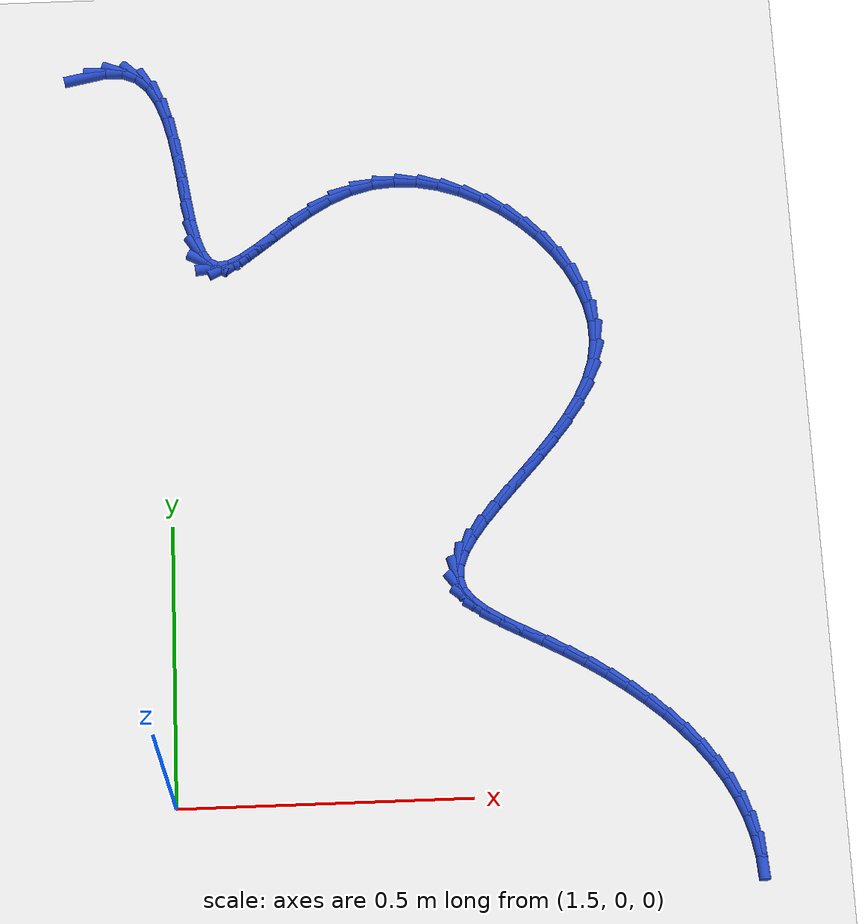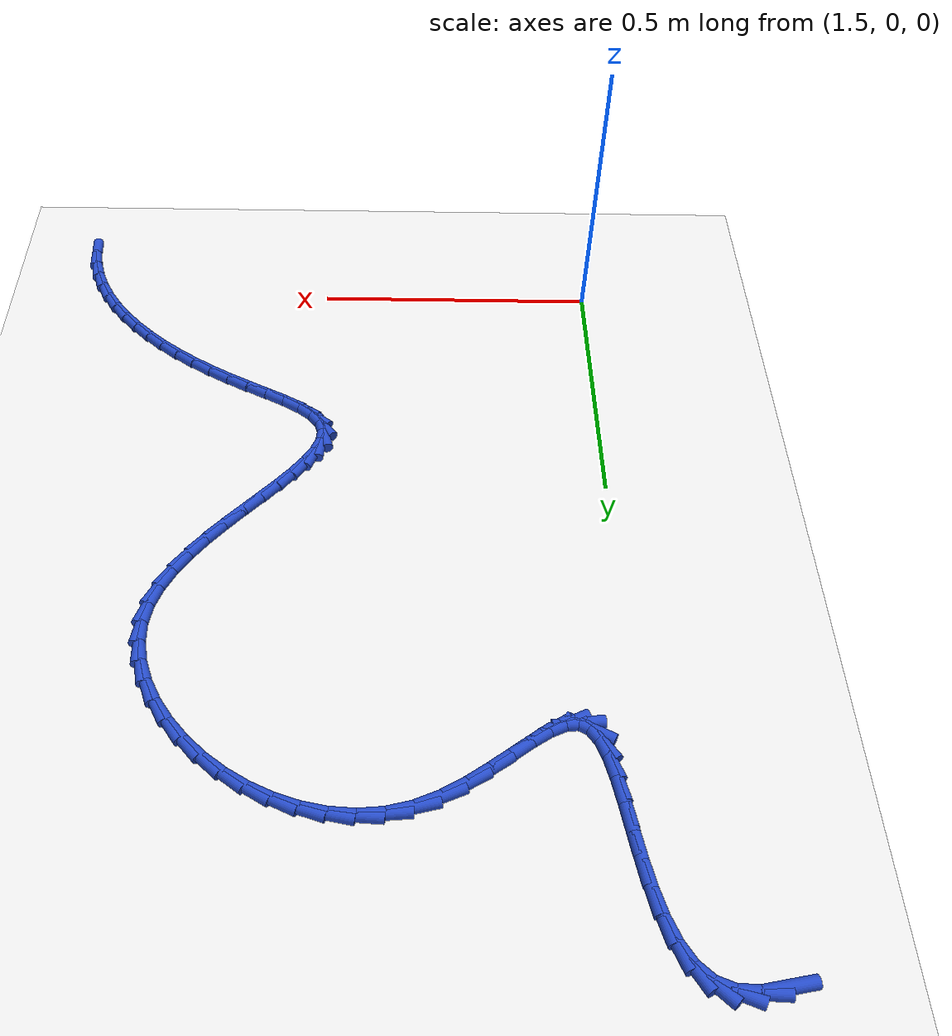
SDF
<sdf version="1.6">
 <world name="default">
  <model name="ground_plane">
   <static>1</static>
   <link name="link">
    <collision name="collision">
     <geometry><plane><normal>0 0 1</normal><size>100 100</size></plane></geometry>
     <surface><friction><ode><mu>100</mu><mu2>50</mu2></ode></friction></surface>
    </collision>
    <visual name="visual">
     <cast_shadows>0</cast_shadows>
     <geometry><plane><normal>0 0 1</normal><size>100 100</size></plane></geometry>
     <material>
      <script><uri>file://media/materials/scripts/gazebo.material</uri><name>Gazebo/WhiteGlow</name></script>
     </material>
    </visual>
   </link>
  </model>
  <model name="line">
   <link name="link_68">
    <pose>1.351033961393879 1.375672532881729 0.01 0 1.57 0.20629088825271072</pose>
    <collision name="collision">
     <geometry><cylinder><radius>0.01</radius><length>0.08</length></cylinder></geometry>
    </collision>
    <visual name="visual">
     <material>
      <script><name>Gazebo/Blue</name><uri>file://media/materials/scripts/gazebo.material</uri></script>
     </material>
     <geometry><cylinder><radius>0.01</radius><length>0.08</length></cylinder></geometry>
    </visual>
   </link>
   <link name="link_69">
    <pose>1.3872013636796257 1.383241208271342 0.01 0 1.57 -0.03338835733212643</pose>
    <collision name="collision">
     <geometry><cylinder><radius>0.01</radius><length>0.08</length></cylinder></geometry>
    </collision>
    <visual name="visual">
     <material>
      <script><name>Gazebo/Blue</name><uri>file://media/materials/scripts/gazebo.material</uri></script>
     </material>
     <geometry><cylinder><radius>0.01</radius><length>0.08</length></cylinder></geometry>
    </visual>
   </link>
   <link name="link_70">
    <pose>1.419308450094514 1.3821688068695377 0.01 0 1.57 -0.3823704977334761</pose>
    <collision name="collision">
     <geometry><cylinder><radius>0.01</radius><length>0.08</length></cylinder></geometry>
    </collision>
    <visual name="visual">
     <material>
      <script><name>Gazebo/Blue</name><uri>file://media/materials/scripts/gazebo.material</uri></script>
     </material>
     <geometry><cylinder><radius>0.01</radius><length>0.08</length></cylinder></geometry>
    </visual>
   </link>
   <link name="link_71">
    <pose>1.446483925771118 1.371239808978046 0.01 0 1.57 -0.7630492864080168</pose>
    <collision name="collision">
     <geometry><cylinder><radius>0.01</radius><length>0.08</length></cylinder></geometry>
    </collision>
    <visual name="visual">
     <material>
      <script><name>Gazebo/Blue</name><uri>file://media/materials/scripts/gazebo.material</uri></script>
     </material>
     <geometry><cylinder><radius>0.01</radius><length>0.08</length></cylinder></geometry>
    </visual>
   </link>
   <link name="link_72">
    <pose>1.4684124964242236 1.350270125774664 0.01 0 1.57 -1.0356734279002084</pose>
    <collision name="collision">
     <geometry><cylinder><radius>0.01</radius><length>0.08</length></cylinder></geometry>
    </collision>
    <visual name="visual">
     <material>
      <script><name>Gazebo/Blue</name><uri>file://media/materials/scripts/gazebo.material</uri></script>
     </material>
     <geometry><cylinder><radius>0.01</radius><length>0.08</length></cylinder></geometry>
    </visual>
   </link>
   <link name="link_73">
    <pose>1.4857915238135466 1.3209542360951931 0.01 0 1.57 -1.2066135452431048</pose>
    <collision name="collision">
     <geometry><cylinder><radius>0.01</radius><length>0.08</length></cylinder></geometry>
    </collision>
    <visual name="visual">
     <material>
      <script><name>Gazebo/Blue</name><uri>file://media/materials/scripts/gazebo.material</uri></script>
     </material>
     <geometry><cylinder><radius>0.01</radius><length>0.08</length></cylinder></geometry>
    </visual>
   </link>
   <link name="link_74">
    <pose>1.4994258593673535 1.2851860217374949 0.01 0 1.57 -1.311566841670992</pose>
    <collision name="collision">
     <geometry><cylinder><radius>0.01</radius><length>0.08</length></cylinder></geometry>
    </collision>
    <visual name="visual">
     <material>
      <script><name>Gazebo/Blue</name><uri>file://media/materials/scripts/gazebo.material</uri></script>
     </material>
     <geometry><cylinder><radius>0.01</radius><length>0.08</length></cylinder></geometry>
    </visual>
   </link>
   <link name="link_75">
    <pose>1.51012035451391 1.244859364499431 0.01 0 1.57 -1.3742673169135975</pose>
    <collision name="collision">
     <geometry><cylinder><radius>0.01</radius><length>0.08</length></cylinder></geometry>
    </collision>
    <visual name="visual">
     <material>
      <script><name>Gazebo/Blue</name><uri>file://media/materials/scripts/gazebo.material</uri></script>
     </material>
     <geometry><cylinder><radius>0.01</radius><length>0.08</length></cylinder></geometry>
    </visual>
   </link>
   <link name="link_76">
    <pose>1.518679860681482 1.2018681461788647 0.01 0 1.57 -1.4070771696291675</pose>
    <collision name="collision">
     <geometry><cylinder><radius>0.01</radius><length>0.08</length></cylinder></geometry>
    </collision>
    <visual name="visual">
     <material>
      <script><name>Gazebo/Blue</name><uri>file://media/materials/scripts/gazebo.material</uri></script>
     </material>
     <geometry><cylinder><radius>0.01</radius><length>0.08</length></cylinder></geometry>
    </visual>
   </link>
   <link name="link_77">
    <pose>1.5259092292983358 1.158106248573656 0.01 0 1.57 -1.4148430730685981</pose>
    <collision name="collision">
     <geometry><cylinder><radius>0.01</radius><length>0.08</length></cylinder></geometry>
    </collision>
    <visual name="visual">
     <material>
      <script><name>Gazebo/Blue</name><uri>file://media/materials/scripts/gazebo.material</uri></script>
     </material>
     <geometry><cylinder><radius>0.01</radius><length>0.08</length></cylinder></geometry>
    </visual>
   </link>
   <link name="link_78">
    <pose>1.5326133117927376 1.1154675534816665 0.01 0 1.57 -1.3963297663300396</pose>
    <collision name="collision">
     <geometry><cylinder><radius>0.01</radius><length>0.08</length></cylinder></geometry>
    </collision>
    <visual name="visual">
     <material>
      <script><name>Gazebo/Blue</name><uri>file://media/materials/scripts/gazebo.material</uri></script>
     </material>
     <geometry><cylinder><radius>0.01</radius><length>0.08</length></cylinder></geometry>
    </visual>
   </link>
   <link name="link_79">
    <pose>1.5395969595929528 1.0758459427007592 0.01 0 1.57 -1.3424138925389821</pose>
    <collision name="collision">
     <geometry><cylinder><radius>0.01</radius><length>0.08</length></cylinder></geometry>
    </collision>
    <visual name="visual">
     <material>
      <script><name>Gazebo/Blue</name><uri>file://media/materials/scripts/gazebo.material</uri></script>
     </material>
     <geometry><cylinder><radius>0.01</radius><length>0.08</length></cylinder></geometry>
    </visual>
   </link>
   <link name="link_80">
    <pose>1.5476650241272478 1.0411352980287956 0.01 0 1.57 -1.2280591861450956</pose>
    <collision name="collision">
     <geometry><cylinder><radius>0.01</radius><length>0.08</length></cylinder></geometry>
    </collision>
    <visual name="visual">
     <material>
      <script><name>Gazebo/Blue</name><uri>file://media/materials/scripts/gazebo.material</uri></script>
     </material>
     <geometry><cylinder><radius>0.01</radius><length>0.08</length></cylinder></geometry>
    </visual>
   </link>
   <link name="link_81">
    <pose>1.5576223568238892 1.0132295012636374 0.01 0 1.57 -0.9883382213593938</pose>
    <collision name="collision">
     <geometry><cylinder><radius>0.01</radius><length>0.08</length></cylinder></geometry>
    </collision>
    <visual name="visual">
     <material>
      <script><name>Gazebo/Blue</name><uri>file://media/materials/scripts/gazebo.material</uri></script>
     </material>
     <geometry><cylinder><radius>0.01</radius><length>0.08</length></cylinder></geometry>
    </visual>
   </link>
   <link name="link_82">
    <pose>1.5702738091111414 0.9940224342031458 0.01 0 1.57 -0.49083111527729983</pose>
    <collision name="collision">
     <geometry><cylinder><radius>0.01</radius><length>0.08</length></cylinder></geometry>
    </collision>
    <visual name="visual">
     <material>
      <script><name>Gazebo/Blue</name><uri>file://media/materials/scripts/gazebo.material</uri></script>
     </material>
     <geometry><cylinder><radius>0.01</radius><length>0.08</length></cylinder></geometry>
    </visual>
   </link>
   <link name="link_83">
    <pose>1.5864201101062132 0.9853929436850627 0.01 0 1.57 0.12040459376198254</pose>
    <collision name="collision">
     <geometry><cylinder><radius>0.01</radius><length>0.08</length></cylinder></geometry>
    </collision>
    <visual name="visual">
     <material>
      <script><name>Gazebo/Blue</name><uri>file://media/materials/scripts/gazebo.material</uri></script>
     </material>
     <geometry><cylinder><radius>0.01</radius><length>0.08</length></cylinder></geometry>
    </visual>
   </link>
   <link name="link_84">
    <pose>1.606478101687155 0.9878197567480504 0.01 0 1.57 0.44988589604711055</pose>
    <collision name="collision">
     <geometry><cylinder><radius>0.01</radius><length>0.08</length></cylinder></geometry>
    </collision>
    <visual name="visual">
     <material>
      <script><name>Gazebo/Blue</name><uri>file://media/materials/scripts/gazebo.material</uri></script>
     </material>
     <geometry><cylinder><radius>0.01</radius><length>0.08</length></cylinder></geometry>
    </visual>
   </link>
   <link name="link_85">
    <pose>1.6301740337966055 0.9992628622617666 0.01 0 1.57 0.5922025060150036</pose>
    <collision name="collision">
     <geometry><cylinder><radius>0.01</radius><length>0.08</length></cylinder></geometry>
    </collision>
    <visual name="visual">
     <material>
      <script><name>Gazebo/Blue</name><uri>file://media/materials/scripts/gazebo.material</uri></script>
     </material>
     <geometry><cylinder><radius>0.01</radius><length>0.08</length></cylinder></geometry>
    </visual>
   </link>
   <link name="link_86">
    <pose>1.6571619813119014 1.0174190110206622 0.01 0 1.57 0.6459641459978104</pose>
    <collision name="collision">
     <geometry><cylinder><radius>0.01</radius><length>0.08</length></cylinder></geometry>
    </collision>
    <visual name="visual">
     <material>
      <script><name>Gazebo/Blue</name><uri>file://media/materials/scripts/gazebo.material</uri></script>
     </material>
     <geometry><cylinder><radius>0.01</radius><length>0.08</length></cylinder></geometry>
    </visual>
   </link>
   <link name="link_87">
    <pose>1.6870960191103763 1.039984953819188 0.01 0 1.57 0.6488271367369652</pose>
    <collision name="collision">
     <geometry><cylinder><radius>0.01</radius><length>0.08</length></cylinder></geometry>
    </collision>
    <visual name="visual">
     <material>
      <script><name>Gazebo/Blue</name><uri>file://media/materials/scripts/gazebo.material</uri></script>
     </material>
     <geometry><cylinder><radius>0.01</radius><length>0.08</length></cylinder></geometry>
    </visual>
   </link>
   <link name="link_88">
    <pose>1.7196302220693653 1.0646574414517946 0.01 0 1.57 0.6131117380885643</pose>
    <collision name="collision">
     <geometry><cylinder><radius>0.01</radius><length>0.08</length></cylinder></geometry>
    </collision>
    <visual name="visual">
     <material>
      <script><name>Gazebo/Blue</name><uri>file://media/materials/scripts/gazebo.material</uri></script>
     </material>
     <geometry><cylinder><radius>0.01</radius><length>0.08</length></cylinder></geometry>
    </visual>
   </link>
   <link name="link_89">
    <pose>1.754418665066203 1.0891332247129326 0.01 0 1.57 0.5395730058128663</pose>
    <collision name="collision">
     <geometry><cylinder><radius>0.01</radius><length>0.08</length></cylinder></geometry>
    </collision>
    <visual name="visual">
     <material>
      <script><name>Gazebo/Blue</name><uri>file://media/materials/scripts/gazebo.material</uri></script>
     </material>
     <geometry><cylinder><radius>0.01</radius><length>0.08</length></cylinder></geometry>
    </visual>
   </link>
   <link name="link_90">
    <pose>1.7911154229782258 1.1111090543970532 0.01 0 1.57 0.4218973576489955</pose>
    <collision name="collision">
     <geometry><cylinder><radius>0.01</radius><length>0.08</length></cylinder></geometry>
    </collision>
    <visual name="visual">
     <material>
      <script><name>Gazebo/Blue</name><uri>file://media/materials/scripts/gazebo.material</uri></script>
     </material>
     <geometry><cylinder><radius>0.01</radius><length>0.08</length></cylinder></geometry>
    </visual>
   </link>
   <link name="link_91">
    <pose>1.8293745706827669 1.1282816812986065 0.01 0 1.57 0.26058235092189</pose>
    <collision name="collision">
     <geometry><cylinder><radius>0.01</radius><length>0.08</length></cylinder></geometry>
    </collision>
    <visual name="visual">
     <material>
      <script><name>Gazebo/Blue</name><uri>file://media/materials/scripts/gazebo.material</uri></script>
     </material>
     <geometry><cylinder><radius>0.01</radius><length>0.08</length></cylinder></geometry>
    </visual>
   </link>
   <link name="link_92">
    <pose>1.868820972905146 1.138799875141236 0.01 0 1.57 0.0963618826750088</pose>
    <collision name="collision">
     <geometry><cylinder><radius>0.01</radius><length>0.08</length></cylinder></geometry>
    </collision>
    <visual name="visual">
     <material>
      <script><name>Gazebo/Blue</name><uri>file://media/materials/scripts/gazebo.material</uri></script>
     </material>
     <geometry><cylinder><radius>0.01</radius><length>0.08</length></cylinder></geometry>
    </visual>
   </link>
   <link name="link_93">
    <pose>1.9089588301455576 1.1426796507695205 0.01 0 1.57 -0.056030890482977685</pose>
    <collision name="collision">
     <geometry><cylinder><radius>0.01</radius><length>0.08</length></cylinder></geometry>
    </collision>
    <visual name="visual">
     <material>
      <script><name>Gazebo/Blue</name><uri>file://media/materials/scripts/gazebo.material</uri></script>
     </material>
     <geometry><cylinder><radius>0.01</radius><length>0.08</length></cylinder></geometry>
    </visual>
   </link>
   <link name="link_94">
    <pose>1.949261189868305 1.1404191075415555 0.01 0 1.57 -0.19534308611380924</pose>
    <collision name="collision">
     <geometry><cylinder><radius>0.01</radius><length>0.08</length></cylinder></geometry>
    </collision>
    <visual name="visual">
     <material>
      <script><name>Gazebo/Blue</name><uri>file://media/materials/scripts/gazebo.material</uri></script>
     </material>
     <geometry><cylinder><radius>0.01</radius><length>0.08</length></cylinder></geometry>
    </visual>
   </link>
   <link name="link_95">
    <pose>1.9892010995003881 1.1325163453926974 0.01 0 1.57 -0.32244285490836766</pose>
    <collision name="collision">
     <geometry><cylinder><radius>0.01</radius><length>0.08</length></cylinder></geometry>
    </collision>
    <visual name="visual">
     <material>
      <script><name>Gazebo/Blue</name><uri>file://media/materials/scripts/gazebo.material</uri></script>
     </material>
     <geometry><cylinder><radius>0.01</radius><length>0.08</length></cylinder></geometry>
    </visual>
   </link>
   <link name="link_96">
    <pose>2.028251606468808 1.1194694642583047 0.01 0 1.57 -0.43946641264191105</pose>
    <collision name="collision">
     <geometry><cylinder><radius>0.01</radius><length>0.08</length></cylinder></geometry>
    </collision>
    <visual name="visual">
     <material>
      <script><name>Gazebo/Blue</name><uri>file://media/materials/scripts/gazebo.material</uri></script>
     </material>
     <geometry><cylinder><radius>0.01</radius><length>0.08</length></cylinder></geometry>
    </visual>
   </link>
   <link name="link_97">
    <pose>2.065885758200564 1.101776564073734 0.01 0 1.57 -0.549156034107219</pose>
    <collision name="collision">
     <geometry><cylinder><radius>0.01</radius><length>0.08</length></cylinder></geometry>
    </collision>
    <visual name="visual">
     <material>
      <script><name>Gazebo/Blue</name><uri>file://media/materials/scripts/gazebo.material</uri></script>
     </material>
     <geometry><cylinder><radius>0.01</radius><length>0.08</length></cylinder></geometry>
    </visual>
   </link>
   <link name="link_98">
    <pose>2.1015766021226563 1.0799357447743432 0.01 0 1.57 -0.6544906668169542</pose>
    <collision name="collision">
     <geometry><cylinder><radius>0.01</radius><length>0.08</length></cylinder></geometry>
    </collision>
    <visual name="visual">
     <material>
      <script><name>Gazebo/Blue</name><uri>file://media/materials/scripts/gazebo.material</uri></script>
     </material>
     <geometry><cylinder><radius>0.01</radius><length>0.08</length></cylinder></geometry>
    </visual>
   </link>
   <link name="link_99">
    <pose>2.1347971856620847 1.0544451062954892 0.01 0 1.57 -0.7585466673500735</pose>
    <collision name="collision">
     <geometry><cylinder><radius>0.01</radius><length>0.08</length></cylinder></geometry>
    </collision>
    <visual name="visual">
     <material>
      <script><name>Gazebo/Blue</name><uri>file://media/materials/scripts/gazebo.material</uri></script>
     </material>
     <geometry><cylinder><radius>0.01</radius><length>0.08</length></cylinder></geometry>
    </visual>
   </link>
   <link name="link_100">
    <pose>2.16502055624585 1.0258027485725305 0.01 0 1.57 -0.8644940772054529</pose>
    <collision name="collision">
     <geometry><cylinder><radius>0.01</radius><length>0.08</length></cylinder></geometry>
    </collision>
    <visual name="visual">
     <material>
      <script><name>Gazebo/Blue</name><uri>file://media/materials/scripts/gazebo.material</uri></script>
     </material>
     <geometry><cylinder><radius>0.01</radius><length>0.08</length></cylinder></geometry>
    </visual>
   </link>
   <link name="link_101">
    <pose>2.191719761300951 0.9945067715408236 0.01 0 1.57 -0.975644766360742</pose>
    <collision name="collision">
     <geometry><cylinder><radius>0.01</radius><length>0.08</length></cylinder></geometry>
    </collision>
    <visual name="visual">
     <material>
      <script><name>Gazebo/Blue</name><uri>file://media/materials/scripts/gazebo.material</uri></script>
     </material>
     <geometry><cylinder><radius>0.01</radius><length>0.08</length></cylinder></geometry>
    </visual>
   </link>
   <link name="link_102">
    <pose>2.21436784825439 0.9610552751357262 0.01 0 1.57 -1.0954702154787146</pose>
    <collision name="collision">
     <geometry><cylinder><radius>0.01</radius><length>0.08</length></cylinder></geometry>
    </collision>
    <visual name="visual">
     <material>
      <script><name>Gazebo/Blue</name><uri>file://media/materials/scripts/gazebo.material</uri></script>
     </material>
     <geometry><cylinder><radius>0.01</radius><length>0.08</length></cylinder></geometry>
    </visual>
   </link>
   <link name="link_103">
    <pose>2.2324378645331655 0.9259463592925956 0.01 0 1.57 -1.2274777103026575</pose>
    <collision name="collision">
     <geometry><cylinder><radius>0.01</radius><length>0.08</length></cylinder></geometry>
    </collision>
    <visual name="visual">
     <material>
      <script><name>Gazebo/Blue</name><uri>file://media/materials/scripts/gazebo.material</uri></script>
     </material>
     <geometry><cylinder><radius>0.01</radius><length>0.08</length></cylinder></geometry>
    </visual>
   </link>
   <link name="link_104">
    <pose>2.2454028575642777 0.8896781239467891 0.01 0 1.57 -1.3747778285762982</pose>
    <collision name="collision">
     <geometry><cylinder><radius>0.01</radius><length>0.08</length></cylinder></geometry>
    </collision>
    <visual name="visual">
     <material>
      <script><name>Gazebo/Blue</name><uri>file://media/materials/scripts/gazebo.material</uri></script>
     </material>
     <geometry><cylinder><radius>0.01</radius><length>0.08</length></cylinder></geometry>
    </visual>
   </link>
   <link name="link_105">
    <pose>2.2527358747747277 0.8527486690336645 0.01 0 1.57 -1.5391539574803728</pose>
    <collision name="collision">
     <geometry><cylinder><radius>0.01</radius><length>0.08</length></cylinder></geometry>
    </collision>
    <visual name="visual">
     <material>
      <script><name>Gazebo/Blue</name><uri>file://media/materials/scripts/gazebo.material</uri></script>
     </material>
     <geometry><cylinder><radius>0.01</radius><length>0.08</length></cylinder></geometry>
    </visual>
   </link>
   <link name="link_106">
    <pose>2.253909963591515 0.8156560944885792 0.01 0 1.57 1.4222980470561757</pose>
    <collision name="collision">
     <geometry><cylinder><radius>0.01</radius><length>0.08</length></cylinder></geometry>
    </collision>
    <visual name="visual">
     <material>
      <script><name>Gazebo/Blue</name><uri>file://media/materials/scripts/gazebo.material</uri></script>
     </material>
     <geometry><cylinder><radius>0.01</radius><length>0.08</length></cylinder></geometry>
    </visual>
   </link>
   <link name="link_107">
    <pose>2.248410558392682 0.7788952522790412 0.01 0 1.57 1.2487454576347707</pose>
    <collision name="collision">
     <geometry><cylinder><radius>0.01</radius><length>0.08</length></cylinder></geometry>
    </collision>
    <visual name="visual">
     <material>
      <script><name>Gazebo/Blue</name><uri>file://media/materials/scripts/gazebo.material</uri></script>
     </material>
     <geometry><cylinder><radius>0.01</radius><length>0.08</length></cylinder></geometry>
    </visual>
   </link>
   <link name="link_108">
    <pose>2.2363643746056168 0.7427928448236352 0.01 0 1.57 1.110660691047658</pose>
    <collision name="collision">
     <geometry><cylinder><radius>0.01</radius><length>0.08</length></cylinder></geometry>
    </collision>
    <visual name="visual">
     <material>
      <script><name>Gazebo/Blue</name><uri>file://media/materials/scripts/gazebo.material</uri></script>
     </material>
     <geometry><cylinder><radius>0.01</radius><length>0.08</length></cylinder></geometry>
    </visual>
   </link>
   <link name="link_109">
    <pose>2.2188375504929976 0.7074292495853476 0.01 0 1.57 1.0067219440867121</pose>
    <collision name="collision">
     <geometry><cylinder><radius>0.01</radius><length>0.08</length></cylinder></geometry>
    </collision>
    <visual name="visual">
     <material>
      <script><name>Gazebo/Blue</name><uri>file://media/materials/scripts/gazebo.material</uri></script>
     </material>
     <geometry><cylinder><radius>0.01</radius><length>0.08</length></cylinder></geometry>
    </visual>
   </link>
   <link name="link_110">
    <pose>2.196970977867027 0.6728652429869589 0.01 0 1.57 0.9313388312413763</pose>
    <collision name="collision">
     <geometry><cylinder><radius>0.01</radius><length>0.08</length></cylinder></geometry>
    </collision>
    <visual name="visual">
     <material>
      <script><name>Gazebo/Blue</name><uri>file://media/materials/scripts/gazebo.material</uri></script>
     </material>
     <geometry><cylinder><radius>0.01</radius><length>0.08</length></cylinder></geometry>
    </visual>
   </link>
   <link name="link_111">
    <pose>2.1719055485399057 0.6391616014512488 0.01 0 1.57 0.8795852485172704</pose>
    <collision name="collision">
     <geometry><cylinder><radius>0.01</radius><length>0.08</length></cylinder></geometry>
    </collision>
    <visual name="visual">
     <material>
      <script><name>Gazebo/Blue</name><uri>file://media/materials/scripts/gazebo.material</uri></script>
     </material>
     <geometry><cylinder><radius>0.01</radius><length>0.08</length></cylinder></geometry>
    </visual>
   </link>
   <link name="link_112">
    <pose>2.144782154323836 0.6063791014009975 0.01 0 1.57 0.8481507046651663</pose>
    <collision name="collision">
     <geometry><cylinder><radius>0.01</radius><length>0.08</length></cylinder></geometry>
    </collision>
    <visual name="visual">
     <material>
      <script><name>Gazebo/Blue</name><uri>file://media/materials/scripts/gazebo.material</uri></script>
     </material>
     <geometry><cylinder><radius>0.01</radius><length>0.08</length></cylinder></geometry>
    </visual>
   </link>
   <link name="link_113">
    <pose>2.1167416870310203 0.5745785192589847 0.01 0 1.57 0.8355696397469656</pose>
    <collision name="collision">
     <geometry><cylinder><radius>0.01</radius><length>0.08</length></cylinder></geometry>
    </collision>
    <visual name="visual">
     <material>
      <script><name>Gazebo/Blue</name><uri>file://media/materials/scripts/gazebo.material</uri></script>
     </material>
     <geometry><cylinder><radius>0.01</radius><length>0.08</length></cylinder></geometry>
    </visual>
   </link>
   <link name="link_114">
    <pose>2.0889250384736577 0.5438206314479904 0.01 0 1.57 0.8424150192411853</pose>
    <collision name="collision">
     <geometry><cylinder><radius>0.01</radius><length>0.08</length></cylinder></geometry>
    </collision>
    <visual name="visual">
     <material>
      <script><name>Gazebo/Blue</name><uri>file://media/materials/scripts/gazebo.material</uri></script>
     </material>
     <geometry><cylinder><radius>0.01</radius><length>0.08</length></cylinder></geometry>
    </visual>
   </link>
   <link name="link_115">
    <pose>2.0624731004639516 0.5141662143907946 0.01 0 1.57 0.8718362670745026</pose>
    <collision name="collision">
     <geometry><cylinder><radius>0.01</radius><length>0.08</length></cylinder></geometry>
    </collision>
    <visual name="visual">
     <material>
      <script><name>Gazebo/Blue</name><uri>file://media/materials/scripts/gazebo.material</uri></script>
     </material>
     <geometry><cylinder><radius>0.01</radius><length>0.08</length></cylinder></geometry>
    </visual>
   </link>
   <link name="link_116">
    <pose>2.038526764814102 0.4856760445101771 0.01 0 1.57 0.9308023379386862</pose>
    <collision name="collision">
     <geometry><cylinder><radius>0.01</radius><length>0.08</length></cylinder></geometry>
    </collision>
    <visual name="visual">
     <material>
      <script><name>Gazebo/Blue</name><uri>file://media/materials/scripts/gazebo.material</uri></script>
     </material>
     <geometry><cylinder><radius>0.01</radius><length>0.08</length></cylinder></geometry>
    </visual>
   </link>
   <link name="link_117">
    <pose>2.0182269233363126 0.45841089822891845 0.01 0 1.57 1.0325065777816775</pose>
    <collision name="collision">
     <geometry><cylinder><radius>0.01</radius><length>0.08</length></cylinder></geometry>
    </collision>
    <visual name="visual">
     <material>
      <script><name>Gazebo/Blue</name><uri>file://media/materials/scripts/gazebo.material</uri></script>
     </material>
     <geometry><cylinder><radius>0.01</radius><length>0.08</length></cylinder></geometry>
    </visual>
   </link>
   <link name="link_118">
    <pose>2.0027144678427824 0.4324315519697974 0.01 0 1.57 1.19973694129248</pose>
    <collision name="collision">
     <geometry><cylinder><radius>0.01</radius><length>0.08</length></cylinder></geometry>
    </collision>
    <visual name="visual">
     <material>
      <script><name>Gazebo/Blue</name><uri>file://media/materials/scripts/gazebo.material</uri></script>
     </material>
     <geometry><cylinder><radius>0.01</radius><length>0.08</length></cylinder></geometry>
    </visual>
   </link>
   <link name="link_119">
    <pose>1.9931302901457149 0.4077987821555947 0.01 0 1.57 1.4629297462747304</pose>
    <collision name="collision">
     <geometry><cylinder><radius>0.01</radius><length>0.08</length></cylinder></geometry>
    </collision>
    <visual name="visual">
     <material>
      <script><name>Gazebo/Blue</name><uri>file://media/materials/scripts/gazebo.material</uri></script>
     </material>
     <geometry><cylinder><radius>0.01</radius><length>0.08</length></cylinder></geometry>
    </visual>
   </link>
   <link name="link_120">
    <pose>1.9906152820573102 0.3845733652090899 0.01 0 1.57 -1.314786194694162</pose>
    <collision name="collision">
     <geometry><cylinder><radius>0.01</radius><length>0.08</length></cylinder></geometry>
    </collision>
    <visual name="visual">
     <material>
      <script><name>Gazebo/Blue</name><uri>file://media/materials/scripts/gazebo.material</uri></script>
     </material>
     <geometry><cylinder><radius>0.01</radius><length>0.08</length></cylinder></geometry>
    </visual>
   </link>
   <link name="link_121">
    <pose>1.9963103353897702 0.36281607755306317 0.01 0 1.57 -0.9414741623015517</pose>
    <collision name="collision">
     <geometry><cylinder><radius>0.01</radius><length>0.08</length></cylinder></geometry>
    </collision>
    <visual name="visual">
     <material>
      <script><name>Gazebo/Blue</name><uri>file://media/materials/scripts/gazebo.material</uri></script>
     </material>
     <geometry><cylinder><radius>0.01</radius><length>0.08</length></cylinder></geometry>
    </visual>
   </link>
   <link name="link_122">
    <pose>2.011076141329472 0.3425355239122174 0.01 0 1.57 -0.6991957212968587</pose>
    <collision name="collision">
     <geometry><cylinder><radius>0.01</radius><length>0.08</length></cylinder></geometry>
    </collision>
    <visual name="visual">
     <material>
      <script><name>Gazebo/Blue</name><uri>file://media/materials/scripts/gazebo.material</uri></script>
     </material>
     <geometry><cylinder><radius>0.01</radius><length>0.08</length></cylinder></geometry>
    </visual>
   </link>
   <link name="link_123">
    <pose>2.0338524071382396 0.3233826331744254 0.01 0 1.57 -0.5696812350927142</pose>
    <collision name="collision">
     <geometry><cylinder><radius>0.01</radius><length>0.08</length></cylinder></geometry>
    </collision>
    <visual name="visual">
     <material>
      <script><name>Gazebo/Blue</name><uri>file://media/materials/scripts/gazebo.material</uri></script>
     </material>
     <geometry><cylinder><radius>0.01</radius><length>0.08</length></cylinder></geometry>
    </visual>
   </link>
   <link name="link_124">
    <pose>2.062773187222268 0.3048583264343406 0.01 0 1.57 -0.5060104792341039</pose>
    <collision name="collision">
     <geometry><cylinder><radius>0.01</radius><length>0.08</length></cylinder></geometry>
    </collision>
    <visual name="visual">
     <material>
      <script><name>Gazebo/Blue</name><uri>file://media/materials/scripts/gazebo.material</uri></script>
     </material>
     <geometry><cylinder><radius>0.01</radius><length>0.08</length></cylinder></geometry>
    </visual>
   </link>
   <link name="link_125">
    <pose>2.0959697816237575 0.2864630119403424 0.01 0 1.57 -0.4850742265306584</pose>
    <collision name="collision">
     <geometry><cylinder><radius>0.01</radius><length>0.08</length></cylinder></geometry>
    </collision>
    <visual name="visual">
     <material>
      <script><name>Gazebo/Blue</name><uri>file://media/materials/scripts/gazebo.material</uri></script>
     </material>
     <geometry><cylinder><radius>0.01</radius><length>0.08</length></cylinder></geometry>
    </visual>
   </link>
   <link name="link_126">
    <pose>2.131573490384909 0.2676970979408111 0.01 0 1.57 -0.4975927543817858</pose>
    <collision name="collision">
     <geometry><cylinder><radius>0.01</radius><length>0.08</length></cylinder></geometry>
    </collision>
    <visual name="visual">
     <material>
      <script><name>Gazebo/Blue</name><uri>file://media/materials/scripts/gazebo.material</uri></script>
     </material>
     <geometry><cylinder><radius>0.01</radius><length>0.08</length></cylinder></geometry>
    </visual>
   </link>
   <link name="link_127">
    <pose>2.167720794013881 0.24806257267880913 0.01 0 1.57 -0.5325232027847359</pose>
    <collision name="collision">
     <geometry><cylinder><radius>0.01</radius><length>0.08</length></cylinder></geometry>
    </collision>
    <visual name="visual">
     <material>
      <script><name>Gazebo/Blue</name><uri>file://media/materials/scripts/gazebo.material</uri></script>
     </material>
     <geometry><cylinder><radius>0.01</radius><length>0.08</length></cylinder></geometry>
    </visual>
   </link>
   <link name="link_128">
    <pose>2.203081521696741 0.2272240908605312 0.01 0 1.57 -0.5727667612543754</pose>
    <collision name="collision">
     <geometry><cylinder><radius>0.01</radius><length>0.08</length></cylinder></geometry>
    </collision>
    <visual name="visual">
     <material>
      <script><name>Gazebo/Blue</name><uri>file://media/materials/scripts/gazebo.material</uri></script>
     </material>
     <geometry><cylinder><radius>0.01</radius><length>0.08</length></cylinder></geometry>
    </visual>
   </link>
   <link name="link_129">
    <pose>2.2373145223420896 0.20514794915154375 0.01 0 1.57 -0.6169204996288437</pose>
    <collision name="collision">
     <geometry><cylinder><radius>0.01</radius><length>0.08</length></cylinder></geometry>
    </collision>
    <visual name="visual">
     <material>
      <script><name>Gazebo/Blue</name><uri>file://media/materials/scripts/gazebo.material</uri></script>
     </material>
     <geometry><cylinder><radius>0.01</radius><length>0.08</length></cylinder></geometry>
    </visual>
   </link>
   <link name="link_130">
    <pose>2.2701860038926913 0.18183318773979584 0.01 0 1.57 -0.6655778313956469</pose>
    <collision name="collision">
     <geometry><cylinder><radius>0.01</radius><length>0.08</length></cylinder></geometry>
    </collision>
    <visual name="visual">
     <material>
      <script><name>Gazebo/Blue</name><uri>file://media/materials/scripts/gazebo.material</uri></script>
     </material>
     <geometry><cylinder><radius>0.01</radius><length>0.08</length></cylinder></geometry>
    </visual>
   </link>
   <link name="link_131">
    <pose>2.3014621742913093 0.15727884681323667 0.01 0 1.57 -0.7193816680324925</pose>
    <collision name="collision">
     <geometry><cylinder><radius>0.01</radius><length>0.08</length></cylinder></geometry>
    </collision>
    <visual name="visual">
     <material>
      <script><name>Gazebo/Blue</name><uri>file://media/materials/scripts/gazebo.material</uri></script>
     </material>
     <geometry><cylinder><radius>0.01</radius><length>0.08</length></cylinder></geometry>
    </visual>
   </link>
   <link name="link_132">
    <pose>2.33090924148071 0.13148396655981542 0.01 0 1.57 -0.7790074196914173</pose>
    <collision name="collision">
     <geometry><cylinder><radius>0.01</radius><length>0.08</length></cylinder></geometry>
    </collision>
    <visual name="visual">
     <material>
      <script><name>Gazebo/Blue</name><uri>file://media/materials/scripts/gazebo.material</uri></script>
     </material>
     <geometry><cylinder><radius>0.01</radius><length>0.08</length></cylinder></geometry>
    </visual>
   </link>
   <link name="link_133">
    <pose>2.3582934134036555 0.10444758716748162 0.01 0 1.57 -0.8451279229246281</pose>
    <collision name="collision">
     <geometry><cylinder><radius>0.01</radius><length>0.08</length></cylinder></geometry>
    </collision>
    <visual name="visual">
     <material>
      <script><name>Gazebo/Blue</name><uri>file://media/materials/scripts/gazebo.material</uri></script>
     </material>
     <geometry><cylinder><radius>0.01</radius><length>0.08</length></cylinder></geometry>
    </visual>
   </link>
   <link name="link_134">
    <pose>2.3833808980029123 0.07616874882418352 0.01 0 1.57 -0.9183524699661965</pose>
    <collision name="collision">
     <geometry><cylinder><radius>0.01</radius><length>0.08</length></cylinder></geometry>
    </collision>
    <visual name="visual">
     <material>
      <script><name>Gazebo/Blue</name><uri>file://media/materials/scripts/gazebo.material</uri></script>
     </material>
     <geometry><cylinder><radius>0.01</radius><length>0.08</length></cylinder></geometry>
    </visual>
   </link>
   <link name="link_135">
    <pose>2.405937903221244 0.04664649171787078 0.01 0 1.57 -0.9991327468133858</pose>
    <collision name="collision">
     <geometry><cylinder><radius>0.01</radius><length>0.08</length></cylinder></geometry>
    </collision>
    <visual name="visual">
     <material>
      <script><name>Gazebo/Blue</name><uri>file://media/materials/scripts/gazebo.material</uri></script>
     </material>
     <geometry><cylinder><radius>0.01</radius><length>0.08</length></cylinder></geometry>
    </visual>
   </link>
   <link name="link_136">
    <pose>2.425730637001415 0.015879856036492515 0.01 0 1.57 -1.0876338301336927</pose>
    <collision name="collision">
     <geometry><cylinder><radius>0.01</radius><length>0.08</length></cylinder></geometry>
    </collision>
    <visual name="visual">
     <material>
      <script><name>Gazebo/Blue</name><uri>file://media/materials/scripts/gazebo.material</uri></script>
     </material>
     <geometry><cylinder><radius>0.01</radius><length>0.08</length></cylinder></geometry>
    </visual>
   </link>
   <link name="link_137">
    <pose>2.4425253072861906 -0.01613211803200216 0.01 0 1.57 -1.1835815955914952</pose>
    <collision name="collision">
     <geometry><cylinder><radius>0.01</radius><length>0.08</length></cylinder></geometry>
    </collision>
    <visual name="visual">
     <material>
      <script><name>Gazebo/Blue</name><uri>file://media/materials/scripts/gazebo.material</uri></script>
     </material>
     <geometry><cylinder><radius>0.01</radius><length>0.08</length></cylinder></geometry>
    </visual>
   </link>
   <link name="link_138">
    <pose>2.456088122018334 -0.04939039029966402 0.01 0 1.57 -1.2861196103392316</pose>
    <collision name="collision">
     <geometry><cylinder><radius>0.01</radius><length>0.08</length></cylinder></geometry>
    </collision>
    <visual name="visual">
     <material>
      <script><name>Gazebo/Blue</name><uri>file://media/materials/scripts/gazebo.material</uri></script>
     </material>
     <geometry><cylinder><radius>0.01</radius><length>0.08</length></cylinder></geometry>
    </visual>
   </link>
   <link name="link_139">
    <pose>2.466185289140611 -0.08389592057854399 0.01 0 1.57 -1.3937316189179447</pose>
    <collision name="collision">
     <geometry><cylinder><radius>0.01</radius><length>0.08</length></cylinder></geometry>
    </collision>
    <visual name="visual">
     <material>
      <script><name>Gazebo/Blue</name><uri>file://media/materials/scripts/gazebo.material</uri></script>
     </material>
     <geometry><cylinder><radius>0.01</radius><length>0.08</length></cylinder></geometry>
    </visual>
   </link>
   <link name="link_140">
    <pose>2.4725830165957854 -0.11964966868069235 0.01 0 1.57 -1.5042918208510094</pose>
    <collision name="collision">
     <geometry><cylinder><radius>0.01</radius><length>0.08</length></cylinder></geometry>
    </collision>
    <visual name="visual">
     <material>
      <script><name>Gazebo/Blue</name><uri>file://media/materials/scripts/gazebo.material</uri></script>
     </material>
     <geometry><cylinder><radius>0.01</radius><length>0.08</length></cylinder></geometry>
    </visual>
   </link>
  </model>
 </world>
</sdf>
